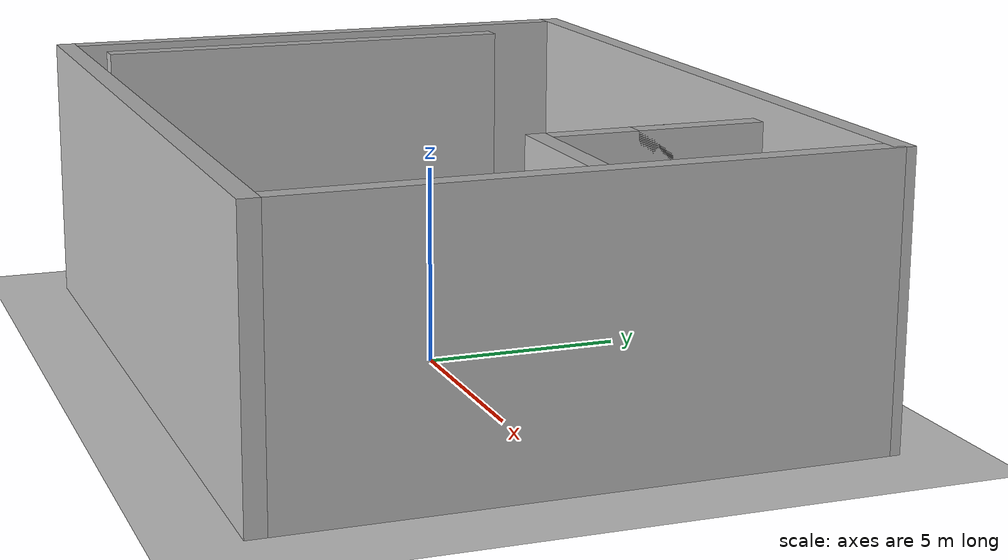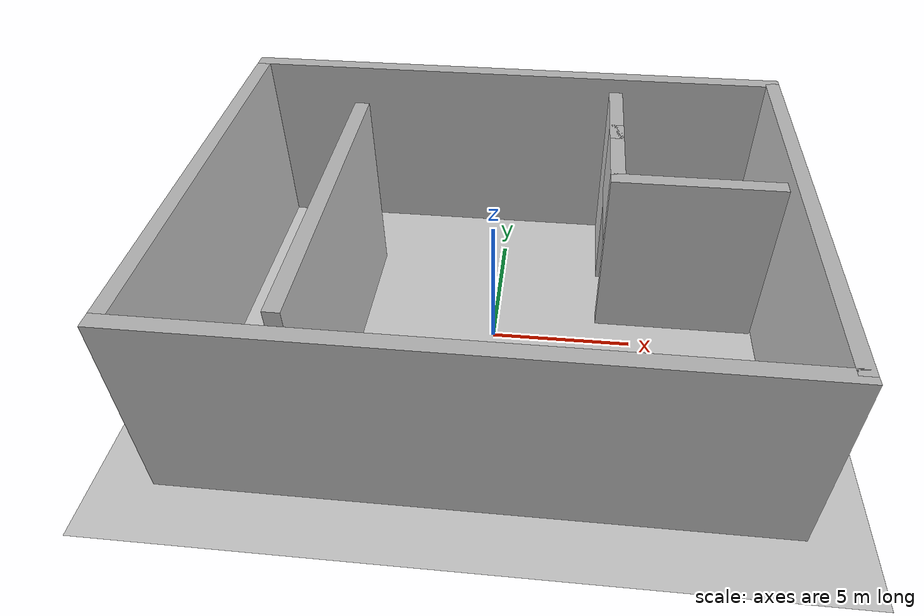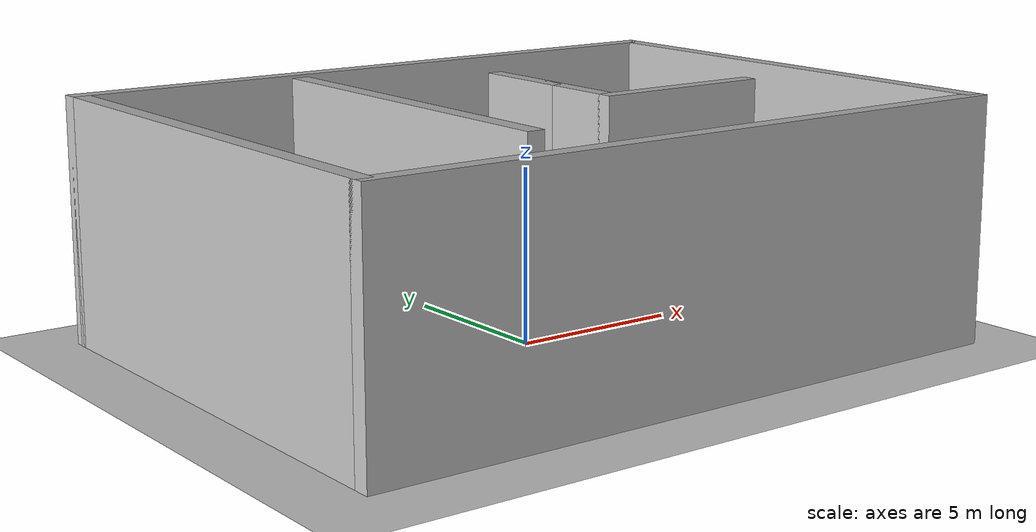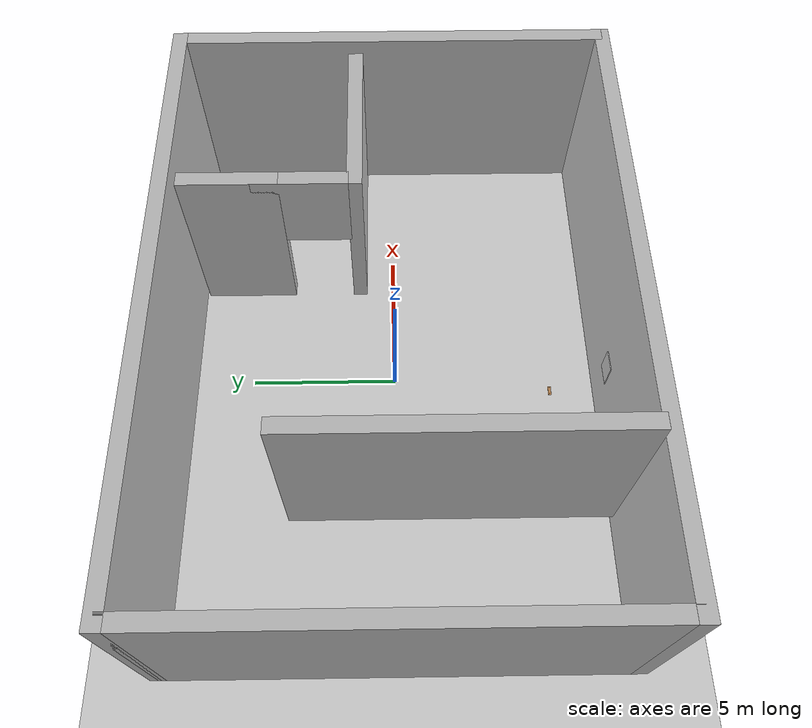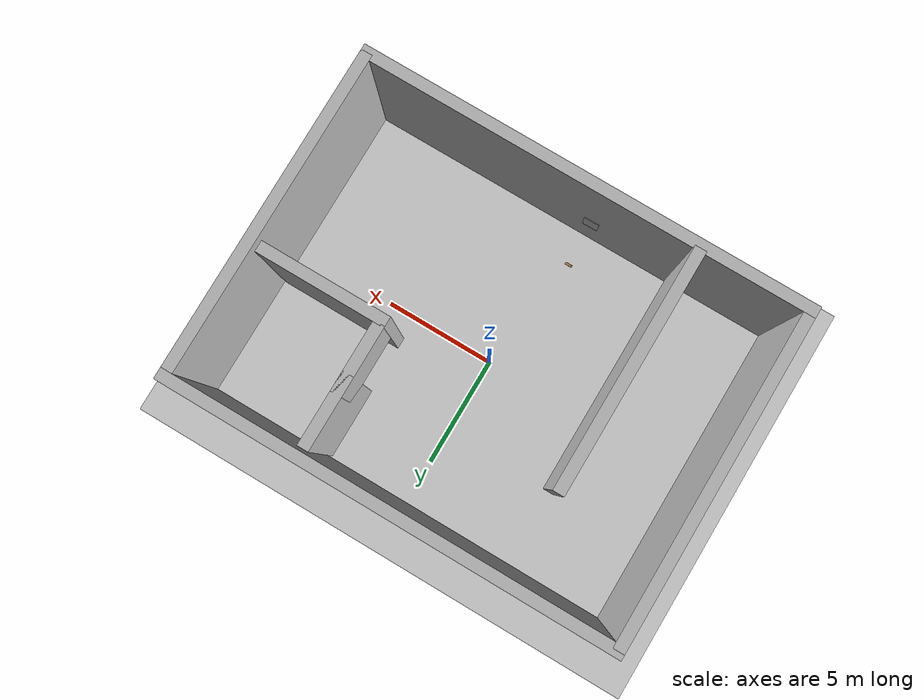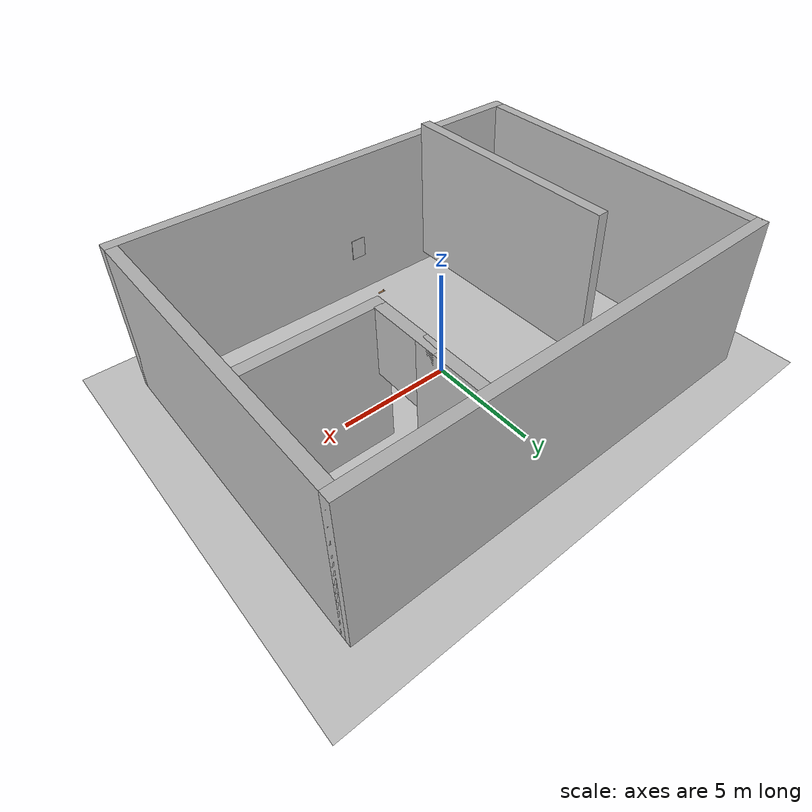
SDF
<sdf version="1.7">
 <world name="default">
  <model name="ground_plane">
   <static>1</static>
   <link name="link">
    <collision name="collision">
     <geometry><plane><normal>0 0 1</normal><size>20 15</size></plane></geometry>
     <surface>
      <contact><collide_bitmask>65535</collide_bitmask></contact>
      <friction><ode><mu>100</mu><mu2>50</mu2></ode></friction>
     </surface>
    </collision>
    <visual name="visual">
     <cast_shadows>0</cast_shadows>
     <geometry><plane><normal>0 0 1</normal><size>20 15</size></plane></geometry>
     <material>
      <script>
       <uri>model://TheFlyingAda/materials/scripts</uri>
       <uri>model://TheFlyingAda/materials/textures</uri>
       <name>Wooden/Floor</name>
      </script>
     </material>
    </visual>
   </link>
  </model>
  <model name="walls">
   <pose>0.034055 0.009348 -3e-06 0 -0 6.8e-05</pose>
   <link name="wall_1">
    <pose>0 7.25 3.5 0 -0 0</pose>
    <collision name="collision">
     <geometry><box><size>20 0.5 7</size></box></geometry>
     <surface>
      <contact><collide_bitmask>65535</collide_bitmask></contact>
      <friction><ode><mu>100</mu><mu2>50</mu2></ode></friction>
     </surface>
    </collision>
    <visual name="visual">
     <geometry><box><size>20 0.5 7</size></box></geometry>
     <material>
      <script>
       <uri>model://TheFlyingAda/materials/scripts</uri>
       <uri>model://TheFlyingAda/materials/textures</uri>
       <name>Plaster/Wall</name>
      </script>
     </material>
    </visual>
    <inertial>
     <inertia><ixx>1</ixx><ixy>0</ixy><ixz>0</ixz><iyy>1</iyy><iyz>0</iyz><izz>1</izz></inertia>
     <mass>1</mass>
    </inertial>
   </link>
   <link name="wall_2">
    <pose>9.75 0 3.5 0 -0 0</pose>
    <collision name="collision">
     <geometry><box><size>0.5 14.5 7</size></box></geometry>
     <surface>
      <contact><collide_bitmask>65535</collide_bitmask></contact>
      <friction><ode><mu>100</mu><mu2>50</mu2></ode></friction>
     </surface>
    </collision>
    <visual name="visual">
     <geometry><box><size>0.5 14.5 7</size></box></geometry>
     <material>
      <script>
       <uri>model://TheFlyingAda/materials/scripts</uri>
       <uri>model://TheFlyingAda/materials/textures</uri>
       <name>Plaster/Wall</name>
      </script>
     </material>
    </visual>
    <inertial>
     <inertia><ixx>1</ixx><ixy>0</ixy><ixz>0</ixz><iyy>1</iyy><iyz>0</iyz><izz>1</izz></inertia>
     <mass>1</mass>
    </inertial>
   </link>
   <link name="wall_3">
    <pose>0 -7.25 3.5 0 -0 0</pose>
    <collision name="collision">
     <geometry><box><size>20 0.5 7</size></box></geometry>
     <surface>
      <contact><collide_bitmask>65535</collide_bitmask></contact>
      <friction><ode><mu>100</mu><mu2>50</mu2></ode></friction>
     </surface>
    </collision>
    <visual name="visual">
     <geometry><box><size>20 0.5 7</size></box></geometry>
     <material>
      <script>
       <uri>model://TheFlyingAda/materials/scripts</uri>
       <uri>model://TheFlyingAda/materials/textures</uri>
       <name>Plaster/Wall</name>
      </script>
     </material>
    </visual>
    <inertial>
     <inertia><ixx>1</ixx><ixy>0</ixy><ixz>0</ixz><iyy>1</iyy><iyz>0</iyz><izz>1</izz></inertia>
     <mass>1</mass>
    </inertial>
   </link>
   <link name="wall_4">
    <pose>-9.75 0 3.5 0 -0 0</pose>
    <collision name="collision">
     <geometry><box><size>0.5 14.5 7</size></box></geometry>
     <surface>
      <contact><collide_bitmask>65535</collide_bitmask></contact>
      <friction><ode><mu>100</mu><mu2>50</mu2></ode></friction>
     </surface>
    </collision>
    <visual name="visual">
     <geometry><box><size>0.5 14.5 7</size></box></geometry>
     <material>
      <script>
       <uri>model://TheFlyingAda/materials/scripts</uri>
       <uri>model://TheFlyingAda/materials/textures</uri>
       <name>Plaster/Wall</name>
      </script>
     </material>
    </visual>
    <inertial>
     <inertia><ixx>1</ixx><ixy>0</ixy><ixz>0</ixz><iyy>1</iyy><iyz>0</iyz><izz>1</izz></inertia>
     <mass>1</mass>
    </inertial>
   </link>
   <link name="wall_5">
    <pose>-5 -1.75 4 0 -0 0</pose>
    <collision name="collision">
     <geometry><box><size>0.5 10.5 7</size></box></geometry>
     <surface>
      <contact><collide_bitmask>65535</collide_bitmask></contact>
      <friction><ode><mu>100</mu><mu2>50</mu2></ode></friction>
     </surface>
    </collision>
    <visual name="visual">
     <geometry><box><size>0.5 10.5 7</size></box></geometry>
     <material>
      <script>
       <uri>model://TheFlyingAda/materials/scripts</uri>
       <uri>model://TheFlyingAda/materials/textures</uri>
       <name>Plaster/Wall</name>
      </script>
     </material>
    </visual>
    <inertial>
     <inertia><ixx>1</ixx><ixy>0</ixy><ixz>0</ixz><iyy>1</iyy><iyz>0</iyz><izz>1</izz></inertia>
     <mass>1</mass>
    </inertial>
   </link>
  </model>
  <model name="corner_room">
   <static>1</static>
   <link name="wall_6">
    <pose>4 5.3 3 0 -0 0</pose>
    <collision name="collision">
     <geometry><box><size>0.5 3.25 7</size></box></geometry>
     <surface>
      <contact><collide_bitmask>65535</collide_bitmask></contact>
      <friction><ode><mu>100</mu><mu2>50</mu2></ode></friction>
     </surface>
    </collision>
    <visual name="visual">
     <geometry><box><size>0.5 3.25 7</size></box></geometry>
     <material>
      <script>
       <uri>model://TheFlyingAda/materials/scripts</uri>
       <uri>model://TheFlyingAda/materials/textures</uri>
       <name>PaintedWood/Wall</name>
      </script>
     </material>
    </visual>
    <inertial>
     <inertia><ixx>1</ixx><ixy>0</ixy><ixz>0</ixz><iyy>1</iyy><iyz>0</iyz><izz>1</izz></inertia>
     <mass>1</mass>
    </inertial>
   </link>
   <link name="wall_7">
    <pose>6.625 1.25 3 0 -0 0</pose>
    <collision name="collision">
     <geometry><box><size>5.75 0.5 7</size></box></geometry>
     <surface>
      <contact><collide_bitmask>65535</collide_bitmask></contact>
      <friction><ode><mu>100</mu><mu2>50</mu2></ode></friction>
     </surface>
    </collision>
    <visual name="visual">
     <geometry><box><size>5.75 0.5 7</size></box></geometry>
     <material>
      <script>
       <uri>model://TheFlyingAda/materials/scripts</uri>
       <uri>model://TheFlyingAda/materials/textures</uri>
       <name>PaintedWood/Wall</name>
      </script>
     </material>
    </visual>
    <inertial>
     <inertia><ixx>1</ixx><ixy>0</ixy><ixz>0</ixz><iyy>1</iyy><iyz>0</iyz><izz>1</izz></inertia>
     <mass>1</mass>
    </inertial>
   </link>
   <link name="wall_8">
    <pose>4 3 5 0 -0 0</pose>
    <collision name="collision">
     <geometry><box><size>0.5 3.125 3</size></box></geometry>
     <surface>
      <contact><collide_bitmask>65535</collide_bitmask></contact>
      <friction><ode><mu>100</mu><mu2>50</mu2></ode></friction>
     </surface>
    </collision>
    <visual name="visual">
     <geometry><box><size>0.5 3.125 3</size></box></geometry>
     <material>
      <script>
       <uri>model://TheFlyingAda/materials/scripts</uri>
       <uri>model://TheFlyingAda/materials/textures</uri>
       <name>PaintedWood/Wall</name>
      </script>
     </material>
    </visual>
    <kinematic>1</kinematic>
    <inertial>
     <inertia><ixx>1</ixx><ixy>0</ixy><ixz>0</ixz><iyy>1</iyy><iyz>0</iyz><izz>1</izz></inertia>
     <mass>1</mass>
    </inertial>
   </link>
   <joint name="joint_wall6_wall7" type="fixed"><parent>wall_6</parent><child>wall_7</child></joint>
   <joint name="joint_wall6_wall8" type="fixed"><parent>wall_6</parent><child>wall_8</child></joint>
   <joint name="joint_wall7_wall8" type="fixed"><parent>wall_7</parent><child>wall_8</child></joint>
  </model>
  <model name="ada_lovelace_poster">
   <link name="link">
    <visual name="visual">
     <geometry><box><size>0.03 0.696 1</size></box></geometry>
     <material>
      <script>
       <uri>https://fuel.ignitionrobotics.org/1.0/ledsantos/models/ada_lovelace_poster/1/files/material/script</uri>
       <uri>https://fuel.ignitionrobotics.org/1.0/ledsantos/models/ada_lovelace_poster/1/files/material/textures</uri>
       <name>Custom/ada_lovelace</name>
      </script>
     </material>
    </visual>
   </link>
   <static>1</static>
   <pose>-0.778946 -6.9581 2.41719 0 0 -1.56116</pose>
  </model>
  <model name="wooden_peg_board">
   <frame name="wooden_board::__model__" attached_to="wooden_board::base">
    <pose relative_to="__model__">0 0 0 0 -0 0</pose>
   </frame>
   <link name="wooden_board::base">
    <pose relative_to="wooden_board::__model__">0 0 0.00523 0 -0 0</pose>
    <inertial>
     <mass>0.2765</mass>
     <inertia>
      <ixx>0.0025148</ixx>
      <ixy>0</ixy>
      <ixz>0</ixz>
      <iyy>0.00024037</iyy>
      <iyz>0</iyz>
      <izz>0.00275013</izz>
     </inertia>
    </inertial>
    <collision name="collision">
     <geometry><box><size>0.1016 0.3302 0.01046</size></box></geometry>
     <surface>
      <contact>
       <poissons_ratio>0.347</poissons_ratio>
       <elastic_modulus>8.8e+09</elastic_modulus>
       <ode><kp>100000</kp><kd>100</kd><max_vel>100</max_vel><min_depth>0.001</min_depth></ode>
      </contact>
      <friction>
       <torsional>
        <coefficient>1</coefficient>
        <use_patch_radius>0</use_patch_radius>
        <surface_radius>0.01</surface_radius>
       </torsional>
      </friction>
     </surface>
    </collision>
    <visual name="visual">
     <geometry><box><size>0.1016 0.3302 0.01046</size></box></geometry>
     <material>
      <script><uri>file://media/materials/scripts/gazebo.material</uri><name>Gazebo/Wood</name></script>
     </material>
    </visual>
    <visual name="tee_nut_1">
     <pose>0 -0.116 0 0 -0 0</pose>
     <geometry><cylinder><radius>0.00635</radius><length>0.0105646</length></cylinder></geometry>
     <material>
      <script><uri>file://media/materials/scripts/gazebo.material</uri><name>Gazebo/Grey</name></script>
     </material>
    </visual>
    <visual name="tee_nut_2">
     <pose>0 -0.038 0 0 -0 0</pose>
     <geometry><cylinder><radius>0.00635</radius><length>0.0105646</length></cylinder></geometry>
     <material>
      <script><uri>file://media/materials/scripts/gazebo.material</uri><name>Gazebo/Grey</name></script>
     </material>
    </visual>
    <visual name="tee_nut_3">
     <pose>0 0.038 0 0 -0 0</pose>
     <geometry><cylinder><radius>0.00635</radius><length>0.0105646</length></cylinder></geometry>
     <material>
      <script><uri>file://media/materials/scripts/gazebo.material</uri><name>Gazebo/Grey</name></script>
     </material>
    </visual>
    <visual name="tee_nut_4">
     <pose>0 0.116 0 0 -0 0</pose>
     <geometry><cylinder><radius>0.00635</radius><length>0.0105646</length></cylinder></geometry>
     <material>
      <script><uri>file://media/materials/scripts/gazebo.material</uri><name>Gazebo/Grey</name></script>
     </material>
    </visual>
   </link>
   <frame name="peg::__model__" attached_to="peg::link">
    <pose relative_to="__model__">0 0.116 0 0 -0 0</pose>
   </frame>
   <link name="peg::link">
    <pose relative_to="peg::__model__">0 0 0.04 0 -0 0</pose>
    <inertial>
     <mass>0.0175</mass>
     <inertia>
      <ixx>9.74923e-06</ixx>
      <ixy>0</ixy>
      <ixz>0</ixz>
      <iyy>9.74923e-06</iyy>
      <iyz>0</iyz>
      <izz>8.31797e-07</izz>
     </inertia>
    </inertial>
    <collision name="collision">
     <geometry><cylinder><radius>0.00975</radius><length>0.08</length></cylinder></geometry>
     <surface>
      <contact>
       <poissons_ratio>0.347</poissons_ratio>
       <elastic_modulus>8.8e+09</elastic_modulus>
       <ode><kp>100000</kp><kd>100</kd><max_vel>100</max_vel><min_depth>0.001</min_depth></ode>
      </contact>
      <friction>
       <torsional>
        <coefficient>1</coefficient>
        <use_patch_radius>0</use_patch_radius>
        <surface_radius>0.01</surface_radius>
       </torsional>
      </friction>
     </surface>
    </collision>
    <visual name="visual">
     <geometry><cylinder><radius>0.00975</radius><length>0.08</length></cylinder></geometry>
     <material>
      <script><uri>file://media/materials/scripts/gazebo.material</uri><name>Gazebo/Wood</name></script>
     </material>
    </visual>
   </link>
   <joint name="board_peg" type="revolute">
    <parent>wooden_board::base</parent>
    <child>peg::link</child>
    <axis>
     <xyz>0 0 1</xyz>
     <limit><upper>0</upper><lower>0</lower></limit>
     <dynamics><spring_reference>0</spring_reference><spring_stiffness>0</spring_stiffness></dynamics>
    </axis>
   </joint>
   <pose>-0.802413 -5.32488 0.773998 1.6e-05 1e-06 1.59083</pose>
  </model>
 </world>
</sdf>
